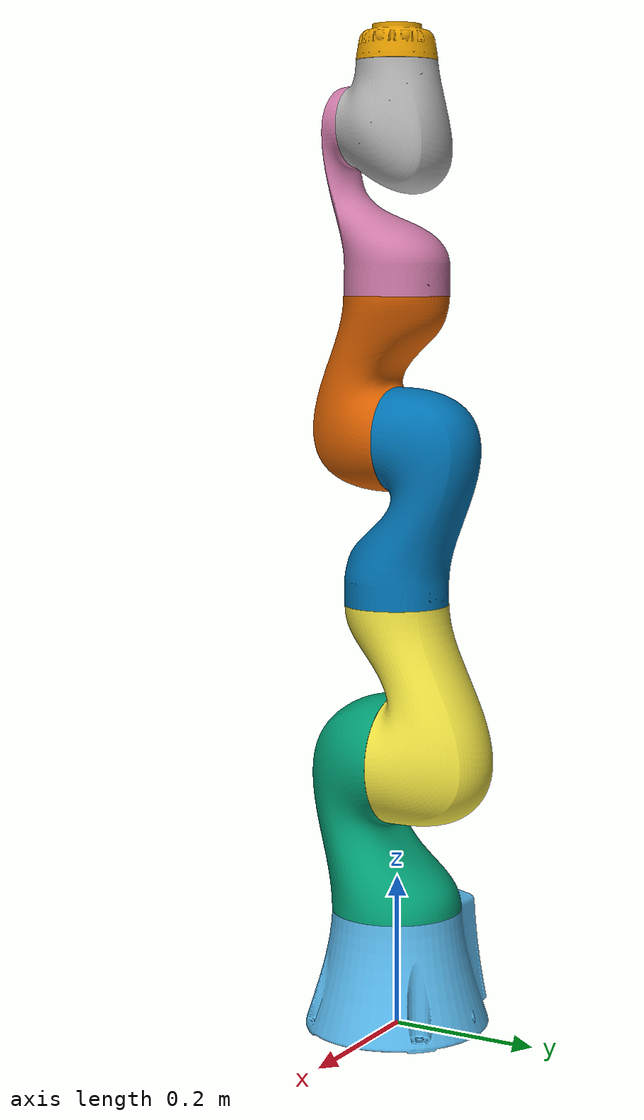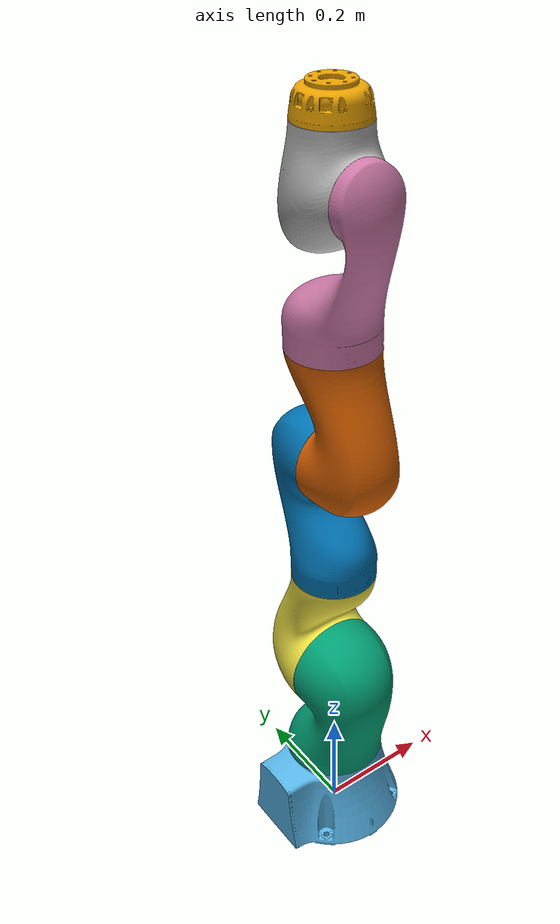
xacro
<?xml version="1.0"?>

<robot name="kuka_iiwa_14" xmlns:xacro="http://wiki.ros.org/xacro">

    <xacro:arg name="control_type" default="Position"/>

    <!-- ROS control plugin -->
    <gazebo>
        <plugin name="gazebo_ros_control" filename="libgazebo_ros_control.so">
            <robotNamespace>/kuka_iiwa_14</robotNamespace>
        </plugin>
    </gazebo>

    <!-- Import all Gazebo-customization elements, including Gazebo colors -->
    <xacro:include filename="$(find kuka_iiwa_14_support)/urdf/kuka_iiwa_14_gazebo.xacro"/>
    <xacro:include filename="$(find kuka_iiwa_14_support)/urdf/kuka_iiwa_14_macro.xacro"/>
    <xacro:include filename="$(find kuka_iiwa_14_support)/urdf/kuka_iiwa_14_transmission.xacro"/>

    <xacro:kuka_iiwa_14 prefix=""/>
    <xacro:kuka_iiwa_14_transmission prefix="" control_type="$(arg control_type)"/>
    <xacro:kuka_iiwa_14_gazebo prefix=""/>

</robot>

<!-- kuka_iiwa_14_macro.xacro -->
<robot xmlns:xacro="http://wiki.ros.org/xacro">
    <xacro:macro name="kuka_iiwa_14" params="prefix">

        <xacro:property name="PI" value="3.14"/>

        <!-- ********************* LINKS *********************** -->

        <link name="world"/>

        <joint name="world_joint" type="fixed">
            <parent link="world"/>
            <child link="base_link"/>
            <origin xyz="0.0 0.0 0.0" rpy="0.0 0.0 0.0"/>
        </joint>

        <link name="${prefix}base_link">
            <inertial>
                <origin xyz="-0.1 0 0.07" rpy="0 0 0"/>
                <mass value="5"/>
                <inertia ixx="0.05" ixy="0" ixz="0" iyy="0.06" iyz="0" izz="0.03"/>
            </inertial>

            <visual>
                <origin xyz="0 0 0" rpy="0 0 0"/>
                <geometry>
                    <mesh filename="package://kuka_iiwa_14_support/meshes/visual/link_0.dae"/>
                </geometry>
            </visual>

            <collision>
                <origin xyz="0 0 0" rpy="0 0 0"/>
                <geometry>
                    <mesh filename="package://kuka_iiwa_14_support/meshes/collision/link_0.stl"/>
                </geometry>
            </collision>

            <self_collision_checking>
                <origin xyz="0 0 0" rpy="0 0 0"/>
                <geometry>
                    <capsule radius="0.15" length="0.25"/>
                </geometry>
            </self_collision_checking>
        </link>
        <link name="${prefix}link_1">
            <inertial>
                <origin xyz="0 -0.03 0.12" rpy="0 0 0"/>
                <mass value="4"/>
                <inertia ixx="0.1" ixy="0" ixz="0" iyy="0.09" iyz="0" izz="0.02"/>
            </inertial>

            <visual>
                <origin xyz="0 0 0" rpy="0 0 0"/>
                <geometry>
                    <mesh filename="package://kuka_iiwa_14_support/meshes/visual/link_1.dae"/>
                </geometry>
            </visual>

            <collision>
                <origin xyz="0 0 0" rpy="0 0 0"/>
                <geometry>
                    <mesh filename="package://kuka_iiwa_14_support/meshes/collision/link_1.stl"/>
                </geometry>
            </collision>
        </link>
        <link name="${prefix}link_2">
            <inertial>
                <origin xyz="0.0003 0.059 0.042" rpy="0 0 0"/>
                <mass value="4"/>
                <inertia ixx="0.05" ixy="0" ixz="0" iyy="0.018" iyz="0" izz="0.044"/>
            </inertial>

            <visual>
                <origin xyz="0 0 0" rpy="0 0 0"/>
                <geometry>
                    <mesh filename="package://kuka_iiwa_14_support/meshes/visual/link_2.dae"/>
                </geometry>
            </visual>

            <collision>
                <origin xyz="0 0 0" rpy="0 0 0"/>
                <geometry>
                    <mesh filename="package://kuka_iiwa_14_support/meshes/collision/link_2.stl"/>
                </geometry>
            </collision>
        </link>
        <link name="${prefix}link_3">
            <inertial>
                <origin xyz="0 0.03 0.13" rpy="0 0 0"/>
                <mass value="3"/>
                <inertia ixx="0.08" ixy="0" ixz="0" iyy="0.075" iyz="0" izz="0.01"/>
            </inertial>

            <visual>
                <origin xyz="0 0 0" rpy="0 0 0"/>
                <geometry>
                    <mesh filename="package://kuka_iiwa_14_support/meshes/visual/link_3.dae"/>
                </geometry>
            </visual>

            <collision>
                <origin xyz="0 0 0" rpy="0 0 0"/>
                <geometry>
                    <mesh filename="package://kuka_iiwa_14_support/meshes/collision/link_3.stl"/>
                </geometry>
            </collision>
        </link>
        <link name="${prefix}link_4">
            <inertial>
                <origin xyz="0 0.067 0.034" rpy="0 0 0"/>
                <mass value="2.7"/>
                <inertia ixx="0.03" ixy="0" ixz="0" iyy="0.01" iyz="0" izz="0.029"/>
            </inertial>

            <visual>
                <origin xyz="0 0 0" rpy="0 0 0"/>
                <geometry>
                    <mesh filename="package://kuka_iiwa_14_support/meshes/visual/link_4.dae"/>
                </geometry>
            </visual>

            <collision>
                <origin xyz="0 0 0" rpy="0 0 0"/>
                <geometry>
                    <mesh filename="package://kuka_iiwa_14_support/meshes/collision/link_4.stl"/>
                </geometry>
            </collision>
        </link>
        <link name="${prefix}link_5">
            <inertial>
                <origin xyz="0.0001 0.021 0.076" rpy="0 0 0"/>
                <mass value="1.7"/>
                <inertia ixx="0.02" ixy="0" ixz="0" iyy="0.018" iyz="0" izz="0.005"/>
            </inertial>

            <visual>
                <origin xyz="0 0 0" rpy="0 0 0"/>
                <geometry>
                    <mesh filename="package://kuka_iiwa_14_support/meshes/visual/link_5.dae"/>
                </geometry>
            </visual>

            <collision>
                <origin xyz="0 0 0" rpy="0 0 0"/>
                <geometry>
                    <mesh filename="package://kuka_iiwa_14_support/meshes/collision/link_5.stl"/>
                </geometry>
            </collision>
        </link>
        <link name="${prefix}link_6">
            <inertial>
                <origin xyz="0 0.0006 0.0004" rpy="0 0 0"/>
                <mass value="1.8"/>
                <inertia ixx="0.025" ixy="0" ixz="0" iyy="0.0136" iyz="0" izz="0.0247"/>
            </inertial>

            <visual>
                <origin xyz="0 0 0" rpy="0 0 0"/>
                <geometry>
                    <mesh filename="package://kuka_iiwa_14_support/meshes/visual/link_6.dae"/>
                </geometry>
            </visual>

            <collision>
                <origin xyz="0 0 0" rpy="0 0 0"/>
                <geometry>
                    <mesh filename="package://kuka_iiwa_14_support/meshes/collision/link_6.stl"/>
                </geometry>
            </collision>
        </link>

        <link name="${prefix}link_7">
            <inertial>
                <origin xyz="0 0 0.02" rpy="0 0 0"/>
                <mass value="${0.3 / 0.308 * 0.44}"/>
                <inertia ixx="0.01" ixy="0" ixz="0" iyy="0.01" iyz="0" izz="0.01"/>
            </inertial>

            <visual>
                <origin xyz="0 0 0" rpy="0 0 0"/>
                <geometry>
                    <mesh filename="package://kuka_iiwa_14_support/meshes/visual/link_7.dae"/>
                </geometry>
            </visual>

            <collision>
                <origin xyz="0 0 0" rpy="0 0 0"/>
                <geometry>
                    <mesh filename="package://kuka_iiwa_14_support/meshes/collision/link_7.stl"/>
                </geometry>
            </collision>
        </link>

        <!-- This frame corresponds to the $FLANGE coordinate system in controllers -->
        <link name="${prefix}tool0"/>

        <!-- ********************* JOINTS *********************** -->

        <joint name="${prefix}joint_1" type="revolute">
            <parent link="${prefix}base_link"/>
            <child link="${prefix}link_1"/>
            <origin xyz="0 0 0.1575" rpy="0 0 0"/>
            <axis xyz="0 0 1"/>
            <limit lower="${-170 * PI / 180}" upper="${170 * PI / 180}"
                   effort="300" velocity="10"/>
            <dynamics damping="0.1" friction="0.1"/>
        </joint>

        <joint name="${prefix}joint_2" type="revolute">
            <parent link="${prefix}link_1"/>
            <child link="${prefix}link_2"/>
            <origin xyz="0 0 0.2025" rpy="${PI / 2}   0 ${PI}"/>
            <axis xyz="0 0 1"/>
            <limit lower="${-120 * PI / 180}" upper="${120 * PI / 180}"
                          effort="300" velocity="10"/>
            <dynamics damping="0.1" friction="0.1"/>
        </joint>

        <joint name="${prefix}joint_3" type="revolute">
            <parent link="${prefix}link_2"/>
            <child link="${prefix}link_3"/>
            <origin xyz="0 0.2045 0" rpy="${PI / 2} 0 ${PI}"/>
            <axis xyz="0 0 1"/>
            <limit lower="${-170 * PI / 180}" upper="${170 * PI / 180}"
                           effort="300" velocity="10"/>
            <dynamics damping="0.1" friction="0.1"/>
        </joint>

        <joint name="${prefix}joint_4" type="revolute">
            <parent link="${prefix}link_3"/>
            <child link="${prefix}link_4"/>
            <origin xyz="0 0 0.2155" rpy="${PI / 2} 0 0"/>
            <axis xyz="0 0 1"/>
            <limit lower="${-120 * PI / 180}" upper="${120 * PI / 180}"
                          effort="300" velocity="10"/>
            <dynamics damping="0.1" friction="0.1"/>
        </joint>

        <joint name="${prefix}joint_5" type="revolute">
            <parent link="${prefix}link_4"/>
            <child link="${prefix}link_5"/>
            <origin xyz="0 0.1845 0" rpy="${-PI / 2} ${PI} 0"/>
            <axis xyz="0 0 1"/>
            <limit lower="${-170 * PI / 180}" upper="${170 * PI / 180}"
                          effort="300" velocity="10"/>
            <dynamics damping="0.1" friction="0.1"/>
        </joint>

        <joint name="${prefix}joint_6" type="revolute">
            <parent link="${prefix}link_5"/>
            <child link="${prefix}link_6"/>
            <origin xyz="0 0 0.2155" rpy="${PI / 2} 0 0"/>
            <axis xyz="0 0 1"/>
            <limit lower="${-120 * PI / 180}" upper="${120 * PI / 180}"
                      effort="300" velocity="10"/>
            <dynamics damping="0.1" friction="0.1"/>
        </joint>

        <joint name="${prefix}joint_7" type="revolute">
            <parent link="${prefix}link_6"/>
            <child link="${prefix}link_7"/>
            <origin xyz="0 0.081 0" rpy="${- PI / 2} ${PI} 0"/>
            <axis xyz="0 0 1"/>
            <limit lower="${-175 * PI / 180}" upper="${175 * PI / 180}"
                           effort="300" velocity="10"/>
            <dynamics damping="0.1" friction="0.1"/>
        </joint>

        <joint name="${prefix}joint_7-tool0" type="fixed">
            <parent link="${prefix}link_7"/>
            <child link="${prefix}tool0"/>
            <origin xyz="0 0 0" rpy="0 0.000000 0"/>
        </joint>

    </xacro:macro>
</robot>
